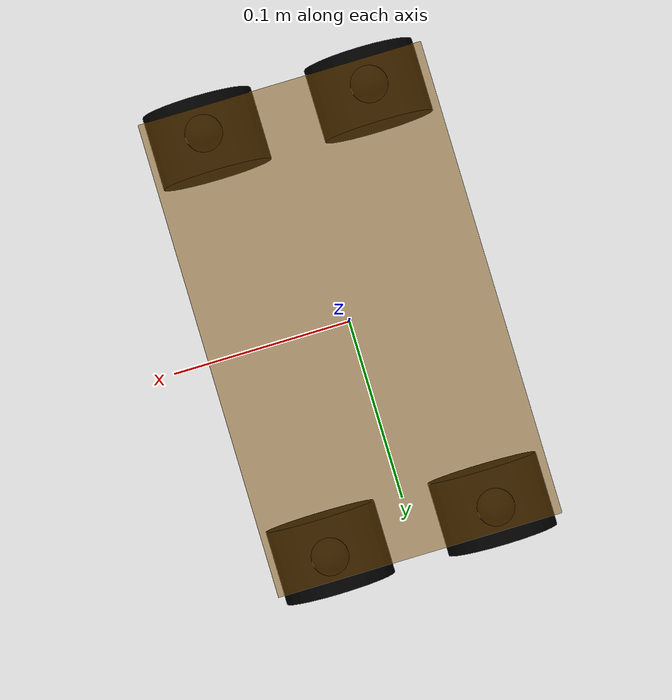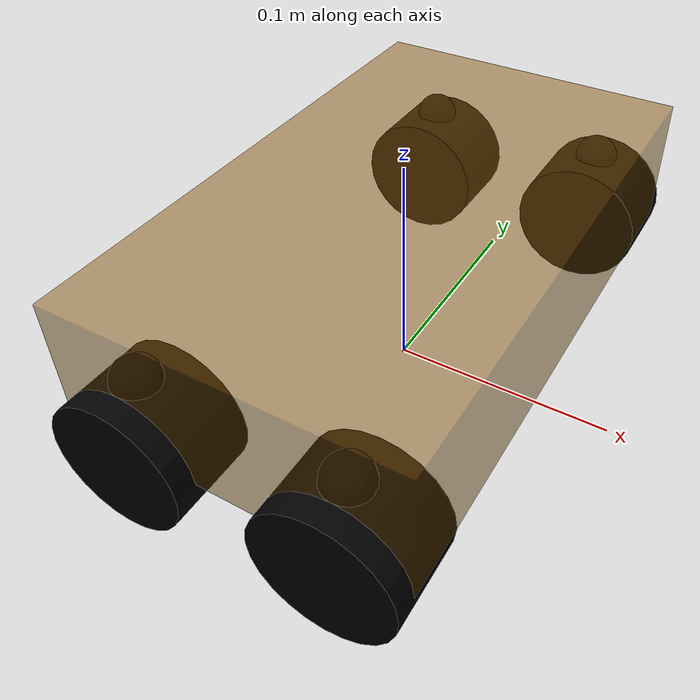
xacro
<?xml version="1.0"?>
<!--
    1.将一些常量、变量封装为 xacro:property
      比如:PI 值、小车底盘半径、离地间距、车轮半径、宽度 ....
    2.使用 宏 封装驱动轮以及支撑轮实现，调用相关宏生成驱动轮与支撑轮
    3.简化模型
    base >> 0.25*0.15*0.1
    wheel >> r=0.03 l=0.04

-->
<!-- 根标签，必须声明 xmlns:xacro -->
<robot name="my_base" xmlns:xacro="http://www.ros.org/wiki/xacro">
    <!-- 封装变量、常量 -->
    <!-- PI 值设置精度需要高一些，否则后续车轮翻转量计算时，可能会出现肉眼不能察觉的车轮倾斜，从而导致模型抖动 -->
    <xacro:property name="PI" value="3.1415926"/>
    <!-- 宏:黑色设置 -->
    <material name="black">
        <color rgba="0.0 0.0 0.0 1.0" />
    </material>
    <!-- 底盘属性 -->
    <xacro:property name="base_footprint_radius" value="0.001" /> <!-- base_footprint 半径  -->
    <xacro:property name="base_link_x" value="0.15" /> <!-- base_link x -->
    <xacro:property name="base_link_y" value="0.25" /> <!-- base_link y -->
    <xacro:property name="base_link_z" value="0.06" /> <!-- base_link z -->
    <xacro:property name="base_link_m" value="5" /> <!-- 质量  -->
    <xacro:property name="earth_space" value="0.03" /> <!--离地距离-->
    <!-- 驱动轮属性 -->
    <xacro:property name="wheel_joint_r" value="0.01" /> <!--驱动轮转向关节-->
    <xacro:property name="wheel_joint_m" value="1" /> <!--驱动轮转向关节-->
    <xacro:property name="wheel_dis_x" value="0.09" /> <!--驱动轮沿baselink_x方向距离-->
    <xacro:property name="wheel_dis_y" value="0.23" /> <!--驱动轮沿baselink_y方向距离-->
    <xacro:property name="wheel_radius" value="0.03" /><!-- 半径 -->
    <xacro:property name="wheel_length" value="0.04" /><!-- 宽度 -->
    <xacro:property name="wheel_m" value="0.5" /> <!-- 质量  -->

    <!-- footprint -->
    <link name="base_footprint">
      <visual>
        <geometry>
          <sphere radius="${base_footprint_radius}" />
        </geometry>
      </visual>
    </link>

    <!-- 底盘 -->
    <link name="base_link">
      <visual>
        <geometry>
          <box size="${base_link_x} ${base_link_y} ${base_link_z}" />
        </geometry>
        <origin xyz="0 0 0" rpy="0 0 0" />
        <material name="yellow">
          <color rgba="0.5 0.3 0.0 0.5" />
        </material>
      </visual>
      <collision>
        <geometry>
          <box size="${base_link_x} ${base_link_y} ${base_link_z}" />
        </geometry>
        <origin xyz="0 0 0" rpy="0 0 0" />
      </collision>
      <xacro:box_inertial_matrix m="${base_link_m}" l="${base_link_x}" w="${base_link_y}" h="${base_link_z}" />
    </link>

    <joint name="base_link2base_footprint" type="fixed">
      <parent link="base_footprint" />
      <child link="base_link" />
      <origin xyz="0 0 ${earth_space + base_link_z / 2 }" />
    </joint>

    <gazebo reference="base_link">
        <material>Gazebo/Yellow</material>
    </gazebo>

    <!-- 驱动轮 -->
    <!-- 驱动轮转向关节 -->
    <xacro:macro name="add_wheel_joints" params="joint_name x_flag y_flag">
      <link name="${joint_name}_wheel_joint">
        <visual>
          <geometry>
            <sphere radius="${wheel_joint_r}" />
          </geometry>
          <origin xyz="0.0 0.0 0.0" rpy="0.0 0.0 0.0" />
          <material name="black" />
        </visual>
        <collision>
          <geometry>
            <sphere radius="${wheel_joint_r}" />
          </geometry>
          <origin xyz="0.0 0.0 0.0" rpy="0.0 0.0 0.0" />
        </collision>
        <xacro:sphere_inertial_matrix m="${wheel_joint_m}" r="${wheel_joint_r}" />
      </link>

      <joint name="${joint_name}_wheel_joint2base_link" type="continuous">
        <parent link="base_link" />
        <child link="${joint_name}_wheel_joint" />
        <origin xyz="${x_flag * wheel_dis_x *0.5} ${y_flag * wheel_dis_y *0.5} 0.0" />
        <axis xyz="0 0 1" />
      </joint>

      <gazebo reference="${joint_name}_wheel_joint">
        <material>Gazebo/Red</material>
      </gazebo>
    </xacro:macro>

    <xacro:add_wheel_joints joint_name="front_left" x_flag="1" y_flag="1" />
    <xacro:add_wheel_joints joint_name="front_right" x_flag="1" y_flag="-1" />
    <xacro:add_wheel_joints joint_name="back_left" x_flag="-1" y_flag="1" />
    <xacro:add_wheel_joints joint_name="back_right" x_flag="-1" y_flag="-1" />

    <!-- 驱动轮 -->
    <xacro:macro name="add_wheels" params="wheel_name">
      <link name="${wheel_name}_wheel">
        <visual>
          <geometry>
            <cylinder radius="${wheel_radius}" length="${wheel_length}" />
          </geometry>
          <origin xyz="0.0 0.0 0.0" rpy="${PI / 2} 0.0 0.0" />
          <material name="black" />
        </visual>
        <collision>
          <geometry>
            <cylinder radius="${wheel_radius}" length="${wheel_length}" />
          </geometry>
          <origin xyz="0.0 0.0 0.0" rpy="${PI / 2} 0.0 0.0" />
        </collision>
        <xacro:cylinder_inertial_matrix m="${wheel_m}" r="${wheel_radius}" h="${wheel_length}" />
      </link>

      <joint name="${wheel_name}_wheel2${wheel_name}_wheel_joint" type="continuous">
        <parent link="${wheel_name}_wheel_joint" />
        <child link="${wheel_name}_wheel" />
        <origin xyz="0 0 -0.030" />
        <axis xyz="0 1 0" />
      </joint>

      <gazebo reference="${wheel_name}_wheel">
        <material>Gazebo/Red</material>
      </gazebo>
    </xacro:macro>

    <xacro:add_wheels wheel_name="front_left" />
    <xacro:add_wheels wheel_name="front_right" />
    <xacro:add_wheels wheel_name="back_left" />
    <xacro:add_wheels wheel_name="back_right" />

</robot>
